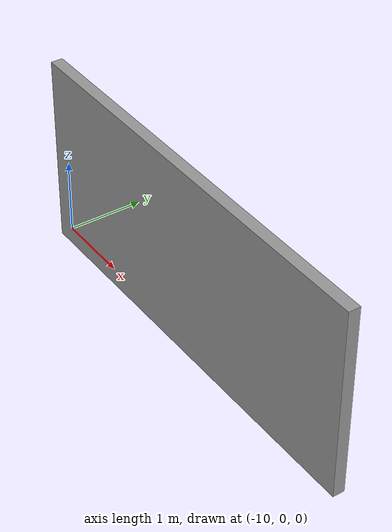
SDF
<?xml version='1.0'?>
<sdf version='1.7'>
  <model name='extra_wall'>
    <pose>-4.99957 -0.077561 0 0 -0 0</pose>
    <link name='Wall_0'>
      <collision name='Wall_0_Collision'>
        <geometry>
          <box>
            <size>5.5 0.15 2.5</size>
          </box>
        </geometry>
        <pose>0 0 1.25 0 -0 0</pose>
      </collision>
      <visual name='Wall_0_Visual'>
        <pose>0 0 1.25 0 -0 0</pose>
        <geometry>
          <box>
            <size>5.5 0.15 2.5</size>
          </box>
        </geometry>
        <material>
          <script>
            <uri>file://media/materials/scripts/gazebo.material</uri>
            <name>Gazebo/Grey</name>
          </script>
          <ambient>1 1 1 1</ambient>
        </material>
        <meta>
          <layer>0</layer>
        </meta>
      </visual>
      <pose>-2.24957 -0.002561 0 0 -0 0</pose>
    </link>
    <static>1</static>
  </model>
</sdf>
